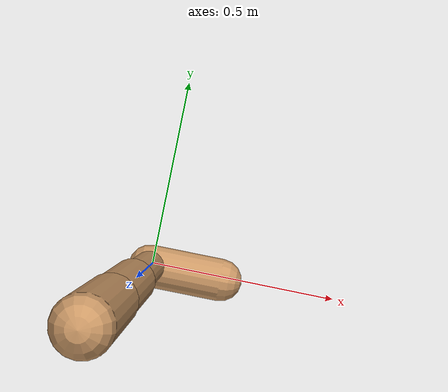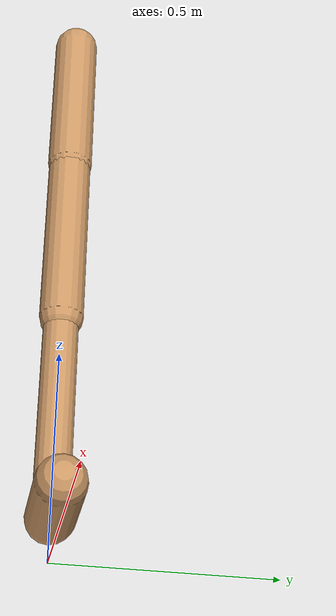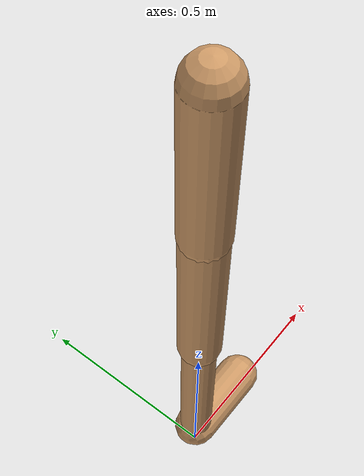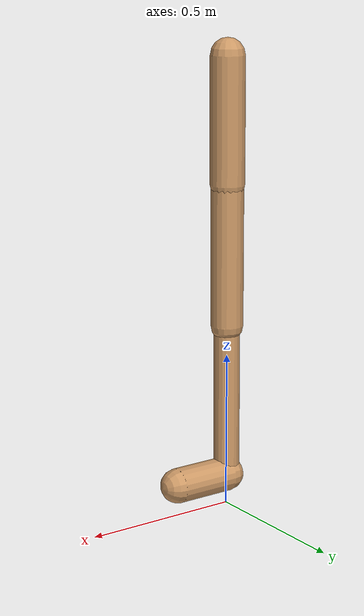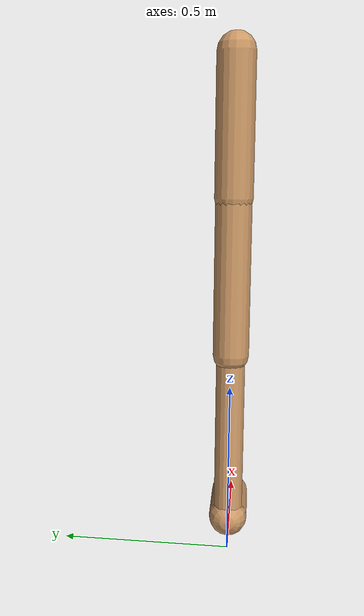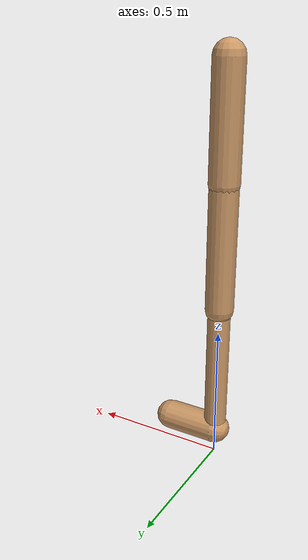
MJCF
<mujoco model="walker2d">
  <compiler angle="degree" coordinate="global" inertiafromgeom="true" />
  <default>
    <joint armature="0.01" damping=".1" limited="true" />
    <geom conaffinity="0" condim="3" contype="1" density="1000" friction="0.8 .1 .1" rgba="0.8 0.6 .4 1" />
  </default>
  <option integrator="RK4" timestep="0.002" />
  <worldbody>

    <body name="torso" pos="0 0 0.0016650193120782788">
      <joint armature="0" axis="1 0 0" damping="0" limited="false" name="ignorex" pos="0 0 0" stiffness="0" type="slide" />
      <joint armature="0" axis="0 0 1" damping="0" limited="false" name="ignorez" pos="0 0 0" ref="1.25" stiffness="0" type="slide" />
      <joint armature="0" axis="0 1 0" damping="0" limited="false" name="ignorey" pos="0 0 0" stiffness="0" type="hinge" />
      <geom fromto="0 0 1.45 0 0 1.05" name="torso_geom" size="0.05468702218805262" type="capsule" />
      <body name="thigh">
        <joint axis="0 -1 0" name="thigh_joint" pos="0 0 1.05" range="-150 0" type="hinge" />
        <geom fromto="0.0 0.0 1.05 0.0 0.0 0.5992113066416471" name="thigh_geom" size="0.05183442546804822" type="capsule" />
        <body name="leg" pos="0.0 0.0 -0.0007886933583528544">
          <joint axis="0 -1 0" name="leg_joint" pos="0 0 0.6" range="-150 0" type="hinge" />
          <geom fromto="0.0 0.0 0.6 0.0 0.0 0.09912367404627459" name="leg_geom" size="0.041467540374438575" type="capsule" />
          <body name="foot" pos="0.0 0.0 -0.0008763259537254153">
            <joint axis="0 -1 0" name="foot_joint" pos="0 0 0.1" range="-45 45" type="hinge" />
            <geom fromto="0.0 0.0 0.1 0.19057262005607734 0.0 0.1" name="foot_geom" size="0.05586131519680591" type="capsule" />
          </body>
        </body>
      </body>

      <body name="thigh_left">
        <joint axis="0 -1 0" name="thigh_left_joint" pos="0 0 1.05" range="-150 0" type="hinge" />
        <geom fromto="0.0 0.0 1.05 0.0 0.0 0.5992113066416471" name="thigh_left_geom" rgba=".7 .3 .6 1" size="0.05183442546804822" type="capsule" />
        <body name="leg_left" pos="0.0 0.0 -0.0007886933583528544">
          <joint axis="0 -1 0" name="leg_left_joint" pos="0 0 0.6" range="-150 0" type="hinge" />
          <geom fromto="0.0 0.0 0.6 0.0 0.0 0.09912367404627459" name="leg_left_geom" rgba=".7 .3 .6 1" size="0.041467540374438575" type="capsule" />
          <body name="foot_left" pos="0.0 0.0 -0.0008763259537254153">
            <joint axis="0 -1 0" name="foot_left_joint" pos="0 0 0.1" range="-45 45" type="hinge" />
            <geom fromto="0.0 0.0 0.1 0.19057262005607734 0.0 0.1" name="foot_left_geom" rgba=".7 .3 .6 1" size="0.05586131519680591" type="capsule" />
          </body>
        </body>
      </body>
    </body>
  </worldbody>
  <actuator>

    <motor ctrllimited="true" ctrlrange="-1.0 1.0" gear="100" joint="thigh_joint" />
    <motor ctrllimited="true" ctrlrange="-1.0 1.0" gear="100" joint="leg_joint" />
    <motor ctrllimited="true" ctrlrange="-1.0 1.0" gear="100" joint="foot_joint" />
    <motor ctrllimited="true" ctrlrange="-1.0 1.0" gear="100" joint="thigh_left_joint" />
    <motor ctrllimited="true" ctrlrange="-1.0 1.0" gear="100" joint="leg_left_joint" />
    <motor ctrllimited="true" ctrlrange="-1.0 1.0" gear="100" joint="foot_left_joint" />

  </actuator>
</mujoco>
